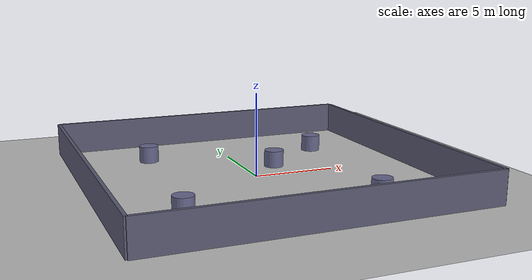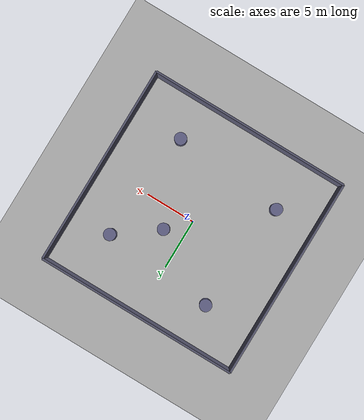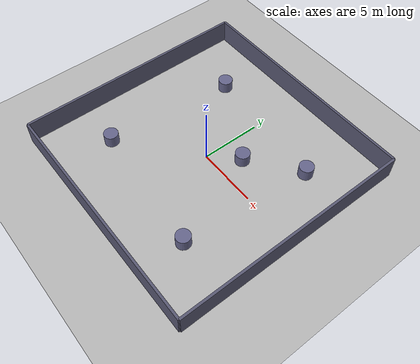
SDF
<?xml version="1.0" ?>
<sdf version="1.6">
  <world name="pursuit_world">
    <gui fullscreen="0">
      <camera name="user_camera">
        <projection_type>orthographic</projection_type>
        <pose>0 0 20 0 1.5708 0</pose>
      </camera>
    </gui>

    <physics name="1ms" type="ignored">
      <max_step_size>0.001</max_step_size>
      <real_time_factor>5.0</real_time_factor>
      <real_time_update_rate>1000</real_time_update_rate>
    </physics>

    <plugin filename="gz-sim-physics-system"           name="gz::sim::systems::Physics"/>
    <plugin filename="gz-sim-user-commands-system"     name="gz::sim::systems::UserCommands"/>
    <plugin filename="gz-sim-scene-broadcaster-system" name="gz::sim::systems::SceneBroadcaster"/>
    <plugin filename="gz-sim-contact-system"           name="gz::sim::systems::Contact"/>
    <plugin filename="gz-sim-sensors-system"           name="gz::sim::systems::Sensors">
      <render_engine>ogre2</render_engine>
    </plugin>

    <light type="directional" name="sun">
      <cast_shadows>true</cast_shadows>
      <pose>0 0 10 0 0 0</pose>
      <diffuse>0.8 0.8 0.8 1</diffuse>
      <specular>0.2 0.2 0.2 1</specular>
      <attenuation>
        <range>1000</range>
        <constant>0.9</constant>
        <linear>0.01</linear>
        <quadratic>0.001</quadratic>
      </attenuation>
      <direction>-0.5 0.1 -0.9</direction>
    </light>

    <model name="ground_plane">
      <static>true</static>
      <link name="link">
        <collision name="collision">
          <geometry><plane><normal>0 0 1</normal><size>100 100</size></plane></geometry>
        </collision>
        <visual name="visual">
          <geometry><plane><normal>0 0 1</normal><size>100 100</size></plane></geometry>
          <material>
            <ambient>0.72 0.72 0.72 1</ambient>
            <diffuse>0.72 0.72 0.72 1</diffuse>
            <specular>0.72 0.72 0.72 1</specular>
          </material>
        </visual>
      </link>
    </model>

    <!-- Bounding walls: 20x20 arena -->
    <model name="bounding_walls">
      <static>true</static>

      <link name="north_wall">
        <pose>0 10 1 0 0 0</pose>
        <collision name="collision"><geometry><box><size>20.0 0.2 2.0</size></box></geometry></collision>
        <visual name="visual">
          <geometry><box><size>20.0 0.2 2.0</size></box></geometry>
          <material><ambient>0.35 0.35 0.45 1</ambient><diffuse>0.35 0.35 0.45 1</diffuse></material>
        </visual>
      </link>

      <link name="south_wall">
        <pose>0 -10 1 0 0 0</pose>
        <collision name="collision"><geometry><box><size>20.0 0.2 2.0</size></box></geometry></collision>
        <visual name="visual">
          <geometry><box><size>20.0 0.2 2.0</size></box></geometry>
          <material><ambient>0.35 0.35 0.45 1</ambient><diffuse>0.35 0.35 0.45 1</diffuse></material>
        </visual>
      </link>

      <link name="east_wall">
        <pose>10 0 1 0 0 0</pose>
        <collision name="collision"><geometry><box><size>0.2 20.0 2.0</size></box></geometry></collision>
        <visual name="visual">
          <geometry><box><size>0.2 20.0 2.0</size></box></geometry>
          <material><ambient>0.35 0.35 0.45 1</ambient><diffuse>0.35 0.35 0.45 1</diffuse></material>
        </visual>
      </link>

      <link name="west_wall">
        <pose>-10 0 1 0 0 0</pose>
        <collision name="collision"><geometry><box><size>0.2 20.0 2.0</size></box></geometry></collision>
        <visual name="visual">
          <geometry><box><size>0.2 20.0 2.0</size></box></geometry>
          <material><ambient>0.35 0.35 0.45 1</ambient><diffuse>0.35 0.35 0.45 1</diffuse></material>
        </visual>
      </link>
    </model>

    <model name="pillars">
      <static>true</static>

      <!-- pillar 1: top-left quadrant -->
      <link name="pillar_1">
        <pose>-5 6 0 0 0 0</pose>
        <collision name="collision">
          <geometry><cylinder><radius>0.6</radius><length>2.0</length></cylinder></geometry>
        </collision>
        <visual name="visual">
          <geometry><cylinder><radius>0.6</radius><length>2.0</length></cylinder></geometry>
          <material><ambient>0.4 0.4 0.55 1</ambient><diffuse>0.4 0.4 0.55 1</diffuse></material>
        </visual>
      </link>

      <!-- pillar 2: top-right quadrant -->
      <link name="pillar_2">
        <pose>6 5 0 0 0 0</pose>
        <collision name="collision">
          <geometry><cylinder><radius>0.6</radius><length>2.0</length></cylinder></geometry>
        </collision>
        <visual name="visual">
          <geometry><cylinder><radius>0.6</radius><length>2.0</length></cylinder></geometry>
          <material><ambient>0.4 0.4 0.55 1</ambient><diffuse>0.4 0.4 0.55 1</diffuse></material>
        </visual>
      </link>

      <!-- pillar 3: center, slightly offset so it doesn't block spawn -->
      <link name="pillar_3">
        <pose>2 2 0 0 0 0</pose>
        <collision name="collision">
          <geometry><cylinder><radius>0.6</radius><length>2.0</length></cylinder></geometry>
        </collision>
        <visual name="visual">
          <geometry><cylinder><radius>0.6</radius><length>2.0</length></cylinder></geometry>
          <material><ambient>0.4 0.4 0.55 1</ambient><diffuse>0.4 0.4 0.55 1</diffuse></material>
        </visual>
      </link>

      <!-- pillar 4: bottom-left quadrant -->
      <link name="pillar_4">
        <pose>-6 -5 0 0 0 0</pose>
        <collision name="collision">
          <geometry><cylinder><radius>0.6</radius><length>2.0</length></cylinder></geometry>
        </collision>
        <visual name="visual">
          <geometry><cylinder><radius>0.6</radius><length>2.0</length></cylinder></geometry>
          <material><ambient>0.4 0.4 0.55 1</ambient><diffuse>0.4 0.4 0.55 1</diffuse></material>
        </visual>
      </link>

      <!-- pillar 5: bottom-right quadrant -->
      <link name="pillar_5">
        <pose>5 -6 0 0 0 0</pose>
        <collision name="collision">
          <geometry><cylinder><radius>0.6</radius><length>2.0</length></cylinder></geometry>
        </collision>
        <visual name="visual">
          <geometry><cylinder><radius>0.6</radius><length>2.0</length></cylinder></geometry>
          <material><ambient>0.4 0.4 0.55 1</ambient><diffuse>0.4 0.4 0.55 1</diffuse></material>
        </visual>
      </link>

    </model>

  </world>
</sdf>
